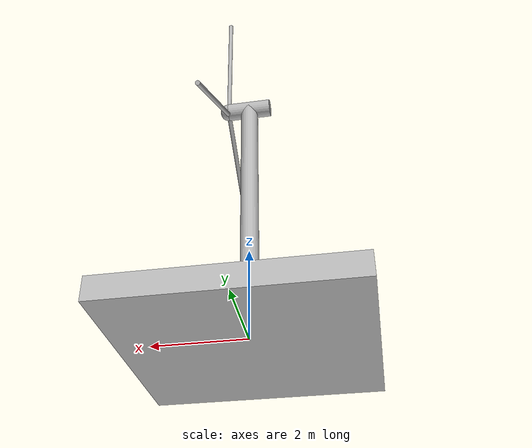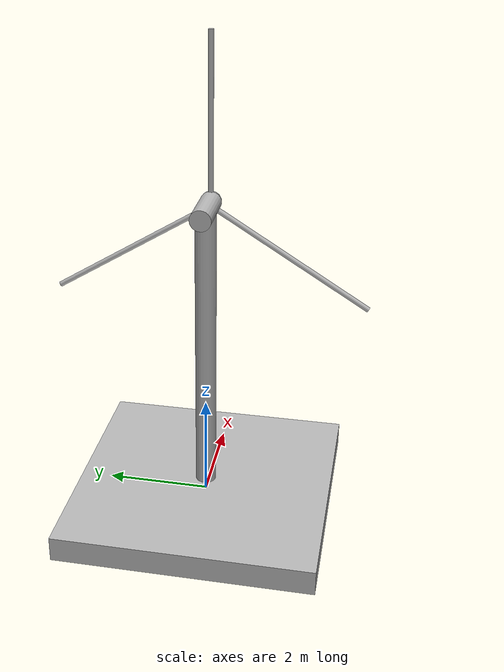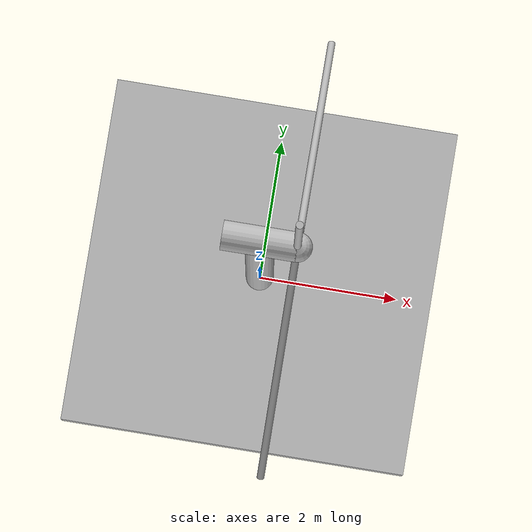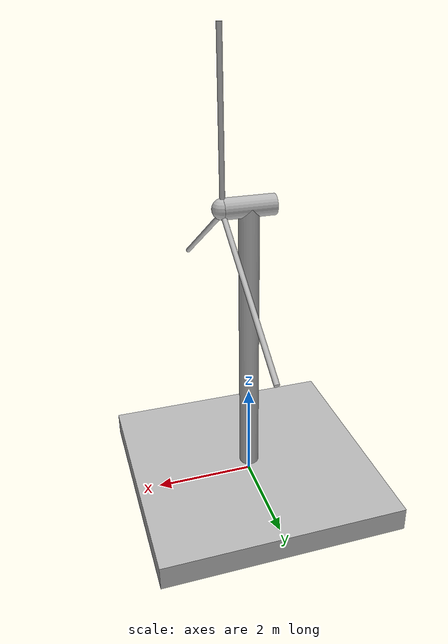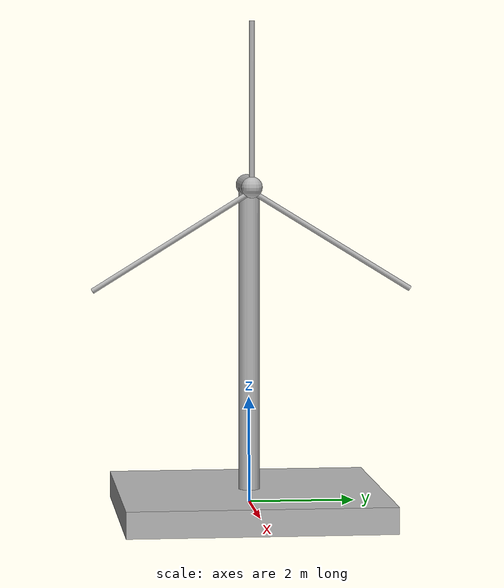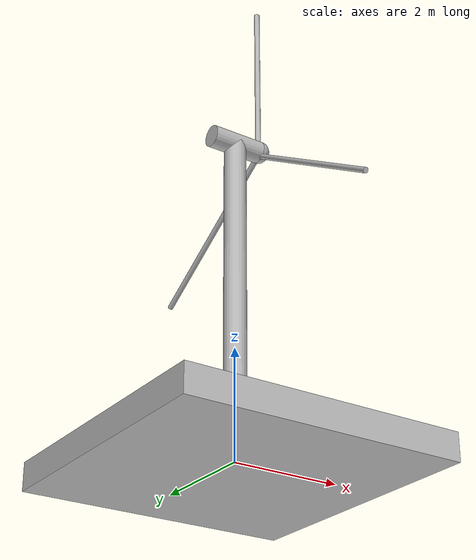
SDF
<?xml version='1.0'?>
<sdf version='1.6'>
  <model name='wind_turbine'>
    <link name='barge'>
      <pose frame=''>0 0 0 0 -0 0</pose>
      <inertial>
        <pose frame=''>0 0 0 0 -0 0</pose>
        <mass>13445.9</mass>
        <inertia>
          <ixx>28112.3</ixx>
          <ixy>0</ixy>
          <ixz>0</ixz>
          <iyy>55638.3</iyy>
          <iyz>0</iyz>
          <izz>28082.3</izz>
        </inertia>
      </inertial>
      <self_collide>0</self_collide>
      <enable_wind>1</enable_wind>
      <kinematic>0</kinematic>
      <visual name='barge_fixed_joint_lump__base_tower_visual_1'>
        <pose frame=''>0 0 3 0 -0 0</pose>
        <geometry>
          <cylinder>
            <length>6</length>
            <radius>0.2</radius>
          </cylinder>
        </geometry>
        <transparency>0</transparency>
        <cast_shadows>1</cast_shadows>
      </visual>
      <visual name='barge_visual'>
        <pose frame=''>0 0 0 0 -0 0</pose>
        <geometry>
          <box>
            <size>5 5 0.5</size>
          </box>
        </geometry>
        <transparency>0</transparency>
        <cast_shadows>1</cast_shadows>
      </visual>
      <collision name='barge_collision'>
        <laser_retro>0</laser_retro>
        <max_contacts>10</max_contacts>
        <pose frame=''>0 0 0 0 -0 0</pose>
        <geometry>
          <box>
            <size>5 5 0.5</size>
          </box>
        </geometry>
        <surface>
          <friction>
            <ode>
              <mu>1</mu>
              <mu2>1</mu2>
              <fdir1>0 0 0</fdir1>
              <slip1>0</slip1>
              <slip2>0</slip2>
            </ode>
            <torsional>
              <coefficient>1</coefficient>
              <patch_radius>0</patch_radius>
              <surface_radius>0</surface_radius>
              <use_patch_radius>1</use_patch_radius>
              <ode>
                <slip>0</slip>
              </ode>
            </torsional>
          </friction>
          <bounce>
            <restitution_coefficient>0</restitution_coefficient>
            <threshold>1e+06</threshold>
          </bounce>
          <contact>
            <collide_without_contact>0</collide_without_contact>
            <collide_without_contact_bitmask>1</collide_without_contact_bitmask>
            <collide_bitmask>1</collide_bitmask>
            <ode>
              <soft_cfm>0</soft_cfm>
              <soft_erp>0.2</soft_erp>
              <kp>1e+13</kp>
              <kd>1</kd>
              <max_vel>0.01</max_vel>
              <min_depth>0</min_depth>
            </ode>
            <bullet>
              <split_impulse>1</split_impulse>
              <split_impulse_penetration_threshold>-0.01</split_impulse_penetration_threshold>
              <soft_cfm>0</soft_cfm>
              <soft_erp>0.2</soft_erp>
              <kp>1e+13</kp>
              <kd>1</kd>
            </bullet>
          </contact>
        </surface>
      </collision>
      <collision name='barge_fixed_joint_lump__base_tower_collision_1'>
        <laser_retro>0</laser_retro>
        <max_contacts>10</max_contacts>
        <pose frame=''>0 0 3 0 -0 0</pose>
        <geometry>
          <cylinder>
            <radius>0.2</radius>
            <length>6</length>
          </cylinder>
        </geometry>
        <surface>
          <friction>
            <ode>
              <mu>1</mu>
              <mu2>1</mu2>
              <fdir1>0 0 0</fdir1>
              <slip1>0</slip1>
              <slip2>0</slip2>
            </ode>
            <torsional>
              <coefficient>1</coefficient>
              <patch_radius>0</patch_radius>
              <surface_radius>0</surface_radius>
              <use_patch_radius>1</use_patch_radius>
              <ode>
                <slip>0</slip>
              </ode>
            </torsional>
          </friction>
          <bounce>
            <restitution_coefficient>0</restitution_coefficient>
            <threshold>1e+06</threshold>
          </bounce>
          <contact>
            <collide_without_contact>0</collide_without_contact>
            <collide_without_contact_bitmask>1</collide_without_contact_bitmask>
            <collide_bitmask>1</collide_bitmask>
            <ode>
              <soft_cfm>0</soft_cfm>
              <soft_erp>0.2</soft_erp>
              <kp>1e+13</kp>
              <kd>1</kd>
              <max_vel>0.01</max_vel>
              <min_depth>0</min_depth>
            </ode>
            <bullet>
              <split_impulse>1</split_impulse>
              <split_impulse_penetration_threshold>-0.01</split_impulse_penetration_threshold>
              <soft_cfm>0</soft_cfm>
              <soft_erp>0.2</soft_erp>
              <kp>1e+13</kp>
              <kd>1</kd>
            </bullet>
          </contact>
        </surface>
      </collision>
    </link>
    <link name='hub'>
      <pose frame=''>0 0 6 0 -0 0</pose>
      <inertial>
        <pose frame=''>0 0 0 0 -0 0</pose>
        <mass>40</mass>
        <inertia>
          <ixx>30.76</ixx>
          <ixy>0</ixy>
          <ixz>0</ixz>
          <iyy>30.76</iyy>
          <iyz>0</iyz>
          <izz>0.1975</izz>
        </inertia>
      </inertial>
      <self_collide>0</self_collide>
      <enable_wind>1</enable_wind>
      <kinematic>0</kinematic>
      <visual name='hub_visual'>
        <pose frame=''>0.5 0 0 0 -0 0</pose>
        <geometry>
          <sphere>
            <radius>0.2</radius>
          </sphere>
        </geometry>
        <transparency>0</transparency>
        <cast_shadows>1</cast_shadows>
      </visual>
      <visual name='hub_fixed_joint_lump__blade_3_visual_3'>
        <pose frame=''>0.5 -1.5 -1 -1.0177 -0 0</pose>
        <geometry>
          <cylinder>
            <length>3.5</length>
            <radius>0.05</radius>
          </cylinder>
        </geometry>
        <transparency>0</transparency>
        <cast_shadows>1</cast_shadows>
      </visual>
      <visual name='hub_fixed_joint_lump__blade_2_visual_2'>
        <pose frame=''>0.5 1.5 -1 1.0177 -0 0</pose>
        <geometry>
          <cylinder>
            <length>3.5</length>
            <radius>0.05</radius>
          </cylinder>
        </geometry>
        <transparency>0</transparency>
        <cast_shadows>1</cast_shadows>
      </visual>
      <visual name='hub_fixed_joint_lump__blade_1_visual_1'>
        <pose frame=''>0.5 0 1.5 0 -0 0</pose>
        <geometry>
          <cylinder>
            <length>3.2</length>
            <radius>0.05</radius>
          </cylinder>
        </geometry>
        <transparency>0</transparency>
        <cast_shadows>1</cast_shadows>
      </visual>
      <collision name='hub_collision'>
        <laser_retro>0</laser_retro>
        <max_contacts>10</max_contacts>
        <pose frame=''>0.5 0 0 0 -0 0</pose>
        <geometry>
          <sphere>
            <radius>0.2</radius>
          </sphere>
        </geometry>
        <surface>
          <friction>
            <ode>
              <mu>1</mu>
              <mu2>1</mu2>
              <fdir1>0 0 0</fdir1>
              <slip1>0</slip1>
              <slip2>0</slip2>
            </ode>
            <torsional>
              <coefficient>1</coefficient>
              <patch_radius>0</patch_radius>
              <surface_radius>0</surface_radius>
              <use_patch_radius>1</use_patch_radius>
              <ode>
                <slip>0</slip>
              </ode>
            </torsional>
          </friction>
          <bounce>
            <restitution_coefficient>0</restitution_coefficient>
            <threshold>1e+06</threshold>
          </bounce>
          <contact>
            <collide_without_contact>0</collide_without_contact>
            <collide_without_contact_bitmask>1</collide_without_contact_bitmask>
            <collide_bitmask>1</collide_bitmask>
            <ode>
              <soft_cfm>0</soft_cfm>
              <soft_erp>0.2</soft_erp>
              <kp>1e+13</kp>
              <kd>1</kd>
              <max_vel>0.01</max_vel>
              <min_depth>0</min_depth>
            </ode>
            <bullet>
              <split_impulse>1</split_impulse>
              <split_impulse_penetration_threshold>-0.01</split_impulse_penetration_threshold>
              <soft_cfm>0</soft_cfm>
              <soft_erp>0.2</soft_erp>
              <kp>1e+13</kp>
              <kd>1</kd>
            </bullet>
          </contact>
        </surface>
      </collision>
      <collision name='hub_fixed_joint_lump__blade_1_collision_1'>
        <laser_retro>0</laser_retro>
        <max_contacts>10</max_contacts>
        <pose frame=''>0.5 0 1.9 0 -0 0</pose>
        <geometry>
          <cylinder>
            <radius>0.05</radius>
            <length>3.5</length>
          </cylinder>
        </geometry>
        <surface>
          <friction>
            <ode>
              <mu>1</mu>
              <mu2>1</mu2>
              <fdir1>0 0 0</fdir1>
              <slip1>0</slip1>
              <slip2>0</slip2>
            </ode>
            <torsional>
              <coefficient>1</coefficient>
              <patch_radius>0</patch_radius>
              <surface_radius>0</surface_radius>
              <use_patch_radius>1</use_patch_radius>
              <ode>
                <slip>0</slip>
              </ode>
            </torsional>
          </friction>
          <bounce>
            <restitution_coefficient>0</restitution_coefficient>
            <threshold>1e+06</threshold>
          </bounce>
          <contact>
            <collide_without_contact>0</collide_without_contact>
            <collide_without_contact_bitmask>1</collide_without_contact_bitmask>
            <collide_bitmask>1</collide_bitmask>
            <ode>
              <soft_cfm>0</soft_cfm>
              <soft_erp>0.2</soft_erp>
              <kp>1e+13</kp>
              <kd>1</kd>
              <max_vel>0.01</max_vel>
              <min_depth>0</min_depth>
            </ode>
            <bullet>
              <split_impulse>1</split_impulse>
              <split_impulse_penetration_threshold>-0.01</split_impulse_penetration_threshold>
              <soft_cfm>0</soft_cfm>
              <soft_erp>0.2</soft_erp>
              <kp>1e+13</kp>
              <kd>1</kd>
            </bullet>
          </contact>
        </surface>
      </collision>
      <collision name='hub_fixed_joint_lump__blade_2_collision_2'>
        <laser_retro>0</laser_retro>
        <max_contacts>10</max_contacts>
        <pose frame=''>0.5 1.5 -1 1.0177 -0 0</pose>
        <geometry>
          <cylinder>
            <radius>0.05</radius>
            <length>3.5</length>
          </cylinder>
        </geometry>
        <surface>
          <friction>
            <ode>
              <mu>1</mu>
              <mu2>1</mu2>
              <fdir1>0 0 0</fdir1>
              <slip1>0</slip1>
              <slip2>0</slip2>
            </ode>
            <torsional>
              <coefficient>1</coefficient>
              <patch_radius>0</patch_radius>
              <surface_radius>0</surface_radius>
              <use_patch_radius>1</use_patch_radius>
              <ode>
                <slip>0</slip>
              </ode>
            </torsional>
          </friction>
          <bounce>
            <restitution_coefficient>0</restitution_coefficient>
            <threshold>1e+06</threshold>
          </bounce>
          <contact>
            <collide_without_contact>0</collide_without_contact>
            <collide_without_contact_bitmask>1</collide_without_contact_bitmask>
            <collide_bitmask>1</collide_bitmask>
            <ode>
              <soft_cfm>0</soft_cfm>
              <soft_erp>0.2</soft_erp>
              <kp>1e+13</kp>
              <kd>1</kd>
              <max_vel>0.01</max_vel>
              <min_depth>0</min_depth>
            </ode>
            <bullet>
              <split_impulse>1</split_impulse>
              <split_impulse_penetration_threshold>-0.01</split_impulse_penetration_threshold>
              <soft_cfm>0</soft_cfm>
              <soft_erp>0.2</soft_erp>
              <kp>1e+13</kp>
              <kd>1</kd>
            </bullet>
          </contact>
        </surface>
      </collision>
      <collision name='hub_fixed_joint_lump__blade_3_collision_3'>
        <laser_retro>0</laser_retro>
        <max_contacts>10</max_contacts>
        <pose frame=''>0.5 -1.5 -1 -1.0177 0 0</pose>
        <geometry>
          <cylinder>
            <radius>0.05</radius>
            <length>3.5</length>
          </cylinder>
        </geometry>
        <surface>
          <friction>
            <ode>
              <mu>1</mu>
              <mu2>1</mu2>
              <fdir1>0 0 0</fdir1>
              <slip1>0</slip1>
              <slip2>0</slip2>
            </ode>
            <torsional>
              <coefficient>1</coefficient>
              <patch_radius>0</patch_radius>
              <surface_radius>0</surface_radius>
              <use_patch_radius>1</use_patch_radius>
              <ode>
                <slip>0</slip>
              </ode>
            </torsional>
          </friction>
          <bounce>
            <restitution_coefficient>0</restitution_coefficient>
            <threshold>1e+06</threshold>
          </bounce>
          <contact>
            <collide_without_contact>0</collide_without_contact>
            <collide_without_contact_bitmask>1</collide_without_contact_bitmask>
            <collide_bitmask>1</collide_bitmask>
            <ode>
              <soft_cfm>0</soft_cfm>
              <soft_erp>0.2</soft_erp>
              <kp>1e+13</kp>
              <kd>1</kd>
              <max_vel>0.01</max_vel>
              <min_depth>0</min_depth>
            </ode>
            <bullet>
              <split_impulse>1</split_impulse>
              <split_impulse_penetration_threshold>-0.01</split_impulse_penetration_threshold>
              <soft_cfm>0</soft_cfm>
              <soft_erp>0.2</soft_erp>
              <kp>1e+13</kp>
              <kd>1</kd>
            </bullet>
          </contact>
        </surface>
      </collision>
    </link>
    <link name='nacelle'>
      <pose frame=''>0 0 6 0 -0 0</pose>
      <inertial>
        <pose frame=''>0 0 0 0 -0 0</pose>
        <mass>10</mass>
        <inertia>
          <ixx>0.93</ixx>
          <ixy>0</ixy>
          <ixz>0</ixz>
          <iyy>0.93</iyy>
          <iyz>0</iyz>
          <izz>0.2</izz>
        </inertia>
      </inertial>
      <self_collide>0</self_collide>
      <enable_wind>1</enable_wind>
      <kinematic>0</kinematic>
      <visual name='nacelle_visual'>
        <pose frame=''>0 0 0 3.14159 1.57079 3.14159</pose>
        <geometry>
          <cylinder>
            <length>1</length>
            <radius>0.2</radius>
          </cylinder>
        </geometry>
        <transparency>0</transparency>
        <cast_shadows>1</cast_shadows>
      </visual>
      <collision name='nacelle_collision'>
        <laser_retro>0</laser_retro>
        <max_contacts>10</max_contacts>
        <pose frame=''>0 0 0 3.14159 1.57079 3.14159</pose>
        <geometry>
          <cylinder>
            <radius>0.2</radius>
            <length>1</length>
          </cylinder>
        </geometry>
        <surface>
          <friction>
            <ode>
              <mu>1</mu>
              <mu2>1</mu2>
              <fdir1>0 0 0</fdir1>
              <slip1>0</slip1>
              <slip2>0</slip2>
            </ode>
            <torsional>
              <coefficient>1</coefficient>
              <patch_radius>0</patch_radius>
              <surface_radius>0</surface_radius>
              <use_patch_radius>1</use_patch_radius>
              <ode>
                <slip>0</slip>
              </ode>
            </torsional>
          </friction>
          <bounce>
            <restitution_coefficient>0</restitution_coefficient>
            <threshold>1e+06</threshold>
          </bounce>
          <contact>
            <collide_without_contact>0</collide_without_contact>
            <collide_without_contact_bitmask>1</collide_without_contact_bitmask>
            <collide_bitmask>1</collide_bitmask>
            <ode>
              <soft_cfm>0</soft_cfm>
              <soft_erp>0.2</soft_erp>
              <kp>1e+13</kp>
              <kd>1</kd>
              <max_vel>0.01</max_vel>
              <min_depth>0</min_depth>
            </ode>
            <bullet>
              <split_impulse>1</split_impulse>
              <split_impulse_penetration_threshold>-0.01</split_impulse_penetration_threshold>
              <soft_cfm>0</soft_cfm>
              <soft_erp>0.2</soft_erp>
              <kp>1e+13</kp>
              <kd>1</kd>
            </bullet>
          </contact>
        </surface>
      </collision>
    </link>
    <joint name='base_tower__nacelle' type='revolute'>
      <parent>barge</parent>
      <child>nacelle</child>
      <pose frame=''>0 0 0 0 -0 0</pose>
      <axis>
        <xyz>0 0 1</xyz>
        <use_parent_model_frame>1</use_parent_model_frame>
        <limit>
          <lower>-1e+16</lower>
          <upper>1e+16</upper>
          <effort>-1</effort>
          <velocity>-1</velocity>
        </limit>
        <dynamics>
          <spring_reference>0</spring_reference>
          <spring_stiffness>0</spring_stiffness>
          <damping>0</damping>
          <friction>0</friction>
        </dynamics>
      </axis>
      <physics>
        <ode>
          <limit>
            <cfm>0</cfm>
            <erp>0.2</erp>
          </limit>
          <suspension>
            <cfm>0</cfm>
            <erp>0.2</erp>
          </suspension>
        </ode>
      </physics>
    </joint>
    <joint name='nacelle__hub' type='revolute'>
      <parent>nacelle</parent>
      <child>hub</child>
      <pose frame=''>0 0 0 0 -0 0</pose>
      <axis>
        <xyz>1 0 0</xyz>
        <use_parent_model_frame>1</use_parent_model_frame>
        <limit>
          <lower>-1e+16</lower>
          <upper>1e+16</upper>
          <effort>-1</effort>
          <velocity>-1</velocity>
        </limit>
        <dynamics>
          <spring_reference>0</spring_reference>
          <spring_stiffness>0</spring_stiffness>
          <damping>0</damping>
          <friction>0</friction>
        </dynamics>
      </axis>
      <physics>
        <ode>
          <limit>
            <cfm>0</cfm>
            <erp>0.2</erp>
          </limit>
          <suspension>
            <cfm>0</cfm>
            <erp>0.2</erp>
          </suspension>
        </ode>
      </physics>
    </joint>
    <static>0</static>
    <allow_auto_disable>1</allow_auto_disable>
    <plugin name='gazebo_ros_control' filename='libgazebo_ros_control.so'>
      <robotNamespace>/wind_turbine</robotNamespace>
      <robotSimType>gazebo_ros_control/DefaultRobotHWSim</robotSimType>
    </plugin>
    <plugin name='imu_plugin' filename='libgazebo_ros_imu.so'>
      <alwaysOn>1</alwaysOn>
      <bodyName>barge</bodyName>
      <topicName>/wind_turbine/barge_imu</topicName>
      <serviceName>imu_service</serviceName>
      <gaussianNoise>0.0</gaussianNoise>
      <updateRate>20.0</updateRate>
      <robotNamespace>/</robotNamespace>
    </plugin>
  </model>
</sdf>
